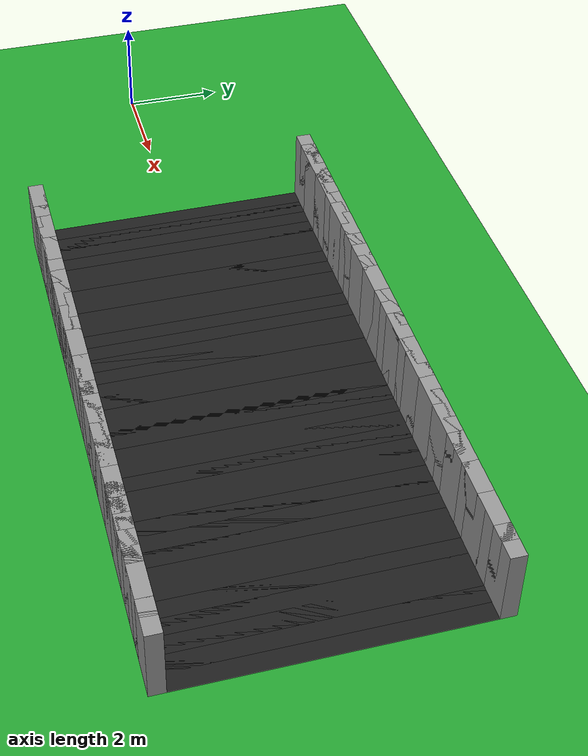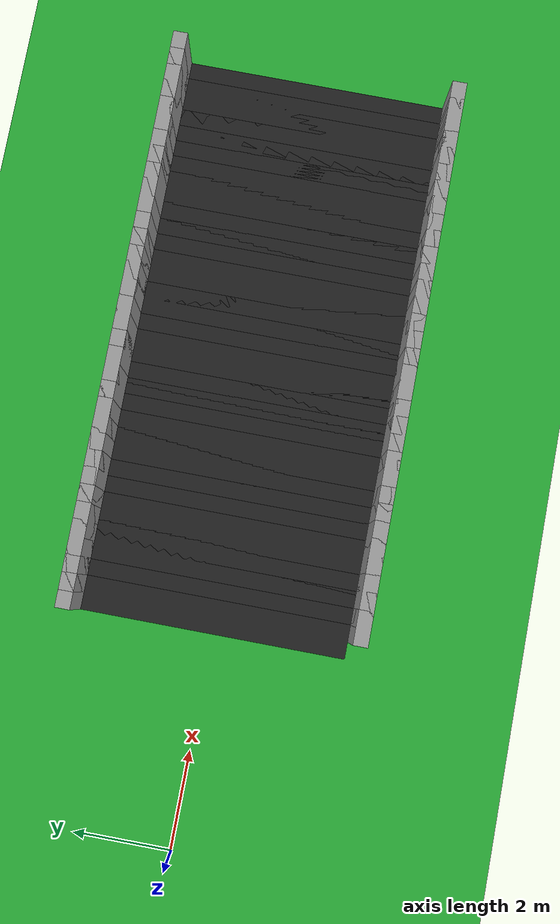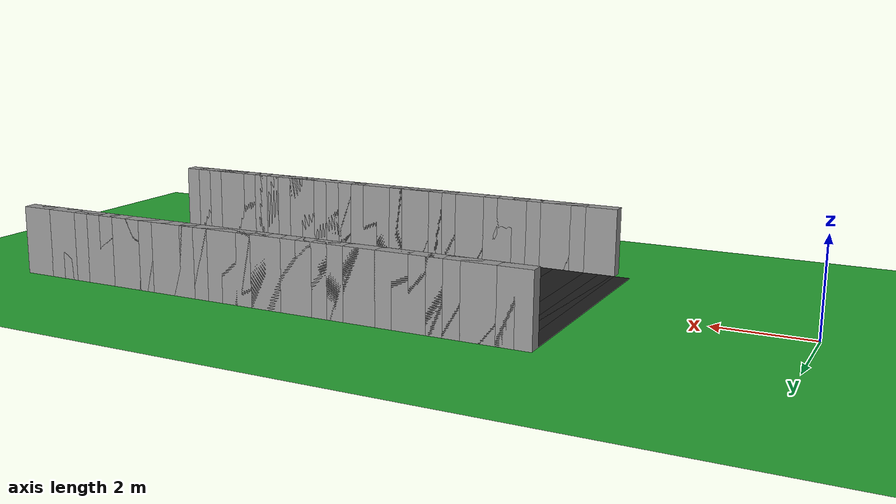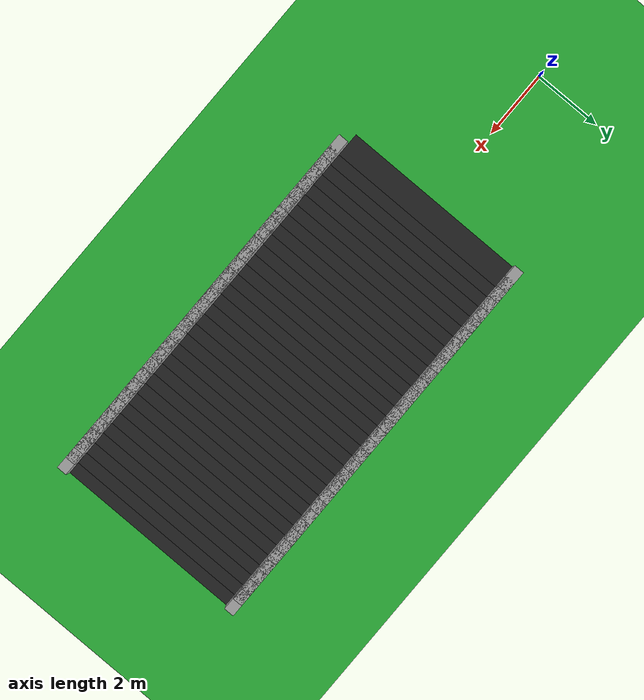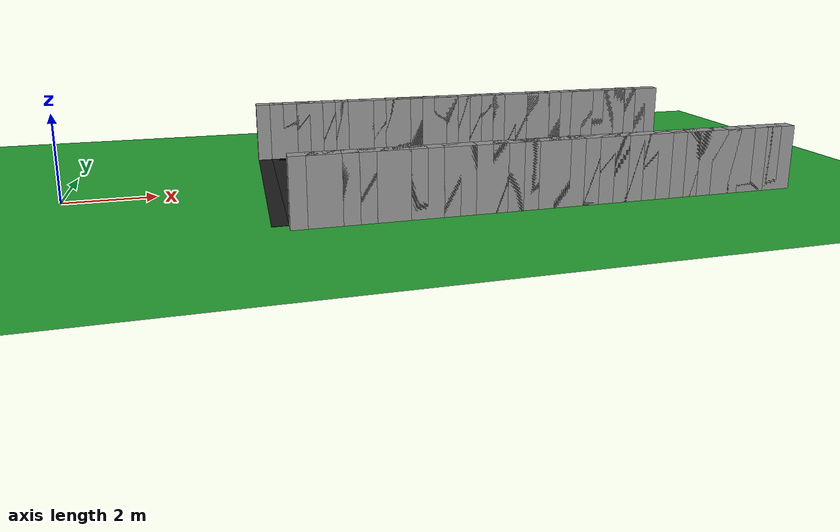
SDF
<sdf version="1.6">
 <world name="loop_speedloop">
  <include><uri>model://sun</uri></include>
  <model name="ground_plane">
   <static>true</static>
   <link name="link">
    <collision name="collision">
     <surface><friction><ode><mu>100</mu><mu2>50</mu2></ode></friction></surface>
     <geometry><plane><normal>0 0 1</normal><size>120 120</size></plane></geometry>
    </collision>
    <visual name="visual">
     <geometry><plane><normal>0 0 1</normal><size>120 120</size></plane></geometry>
     <material>
      <script><uri>file://media/materials/scripts/gazebo.material</uri><name>Gazebo/Green</name></script>
     </material>
    </visual>
   </link>
  </model>
  <model name="asphalt_13">
   <static>true</static>
   <pose>4.725 0.000 0.005 0 0 0.00000</pose>
   <link name="link">
    <visual name="visual">
     <geometry><box><size>0.710 5.500 0.010</size></box></geometry>
     <material>
      <script><uri>file://media/materials/scripts/gazebo.material</uri><name>Gazebo/Black</name></script>
     </material>
    </visual>
   </link>
  </model>
  <model name="curbL_13">
   <static>true</static>
   <pose>4.725 2.900 0.750 0 0 0.00000</pose>
   <link name="link">
    <collision name="collision"><geometry><box><size>0.710 0.300 1.500</size></box></geometry></collision>
    <visual name="visual">
     <geometry><box><size>0.710 0.300 1.500</size></box></geometry>
     <material>
      <script><uri>file://media/materials/scripts/gazebo.material</uri><name>Gazebo/Grey</name></script>
     </material>
    </visual>
   </link>
  </model>
  <model name="asphalt_14">
   <static>true</static>
   <pose>5.075 0.000 0.005 0 0 0.00000</pose>
   <link name="link">
    <visual name="visual">
     <geometry><box><size>0.710 5.500 0.010</size></box></geometry>
     <material>
      <script><uri>file://media/materials/scripts/gazebo.material</uri><name>Gazebo/Black</name></script>
     </material>
    </visual>
   </link>
  </model>
  <model name="curbL_14">
   <static>true</static>
   <pose>5.075 2.900 0.750 0 0 0.00000</pose>
   <link name="link">
    <collision name="collision"><geometry><box><size>0.710 0.300 1.500</size></box></geometry></collision>
    <visual name="visual">
     <geometry><box><size>0.710 0.300 1.500</size></box></geometry>
     <material>
      <script><uri>file://media/materials/scripts/gazebo.material</uri><name>Gazebo/Grey</name></script>
     </material>
    </visual>
   </link>
  </model>
  <model name="curbR_14">
   <static>true</static>
   <pose>5.075 -2.900 0.750 0 0 0.00000</pose>
   <link name="link">
    <collision name="collision"><geometry><box><size>0.710 0.300 1.500</size></box></geometry></collision>
    <visual name="visual">
     <geometry><box><size>0.710 0.300 1.500</size></box></geometry>
     <material>
      <script><uri>file://media/materials/scripts/gazebo.material</uri><name>Gazebo/Grey</name></script>
     </material>
    </visual>
   </link>
  </model>
  <model name="asphalt_15">
   <static>true</static>
   <pose>5.425 0.000 0.005 0 0 0.00000</pose>
   <link name="link">
    <visual name="visual">
     <geometry><box><size>0.710 5.500 0.010</size></box></geometry>
     <material>
      <script><uri>file://media/materials/scripts/gazebo.material</uri><name>Gazebo/Black</name></script>
     </material>
    </visual>
   </link>
  </model>
  <model name="curbL_15">
   <static>true</static>
   <pose>5.425 2.900 0.750 0 0 0.00000</pose>
   <link name="link">
    <collision name="collision"><geometry><box><size>0.710 0.300 1.500</size></box></geometry></collision>
    <visual name="visual">
     <geometry><box><size>0.710 0.300 1.500</size></box></geometry>
     <material>
      <script><uri>file://media/materials/scripts/gazebo.material</uri><name>Gazebo/Grey</name></script>
     </material>
    </visual>
   </link>
  </model>
  <model name="curbR_15">
   <static>true</static>
   <pose>5.425 -2.900 0.750 0 0 0.00000</pose>
   <link name="link">
    <collision name="collision"><geometry><box><size>0.710 0.300 1.500</size></box></geometry></collision>
    <visual name="visual">
     <geometry><box><size>0.710 0.300 1.500</size></box></geometry>
     <material>
      <script><uri>file://media/materials/scripts/gazebo.material</uri><name>Gazebo/Grey</name></script>
     </material>
    </visual>
   </link>
  </model>
  <model name="asphalt_16">
   <static>true</static>
   <pose>5.775 0.000 0.005 0 0 0.00000</pose>
   <link name="link">
    <visual name="visual">
     <geometry><box><size>0.710 5.500 0.010</size></box></geometry>
     <material>
      <script><uri>file://media/materials/scripts/gazebo.material</uri><name>Gazebo/Black</name></script>
     </material>
    </visual>
   </link>
  </model>
  <model name="curbL_16">
   <static>true</static>
   <pose>5.775 2.900 0.750 0 0 0.00000</pose>
   <link name="link">
    <collision name="collision"><geometry><box><size>0.710 0.300 1.500</size></box></geometry></collision>
    <visual name="visual">
     <geometry><box><size>0.710 0.300 1.500</size></box></geometry>
     <material>
      <script><uri>file://media/materials/scripts/gazebo.material</uri><name>Gazebo/Grey</name></script>
     </material>
    </visual>
   </link>
  </model>
  <model name="curbR_16">
   <static>true</static>
   <pose>5.775 -2.900 0.750 0 0 0.00000</pose>
   <link name="link">
    <collision name="collision"><geometry><box><size>0.710 0.300 1.500</size></box></geometry></collision>
    <visual name="visual">
     <geometry><box><size>0.710 0.300 1.500</size></box></geometry>
     <material>
      <script><uri>file://media/materials/scripts/gazebo.material</uri><name>Gazebo/Grey</name></script>
     </material>
    </visual>
   </link>
  </model>
  <model name="asphalt_17">
   <static>true</static>
   <pose>6.125 0.000 0.005 0 0 0.00000</pose>
   <link name="link">
    <visual name="visual">
     <geometry><box><size>0.710 5.500 0.010</size></box></geometry>
     <material>
      <script><uri>file://media/materials/scripts/gazebo.material</uri><name>Gazebo/Black</name></script>
     </material>
    </visual>
   </link>
  </model>
  <model name="curbL_17">
   <static>true</static>
   <pose>6.125 2.900 0.750 0 0 0.00000</pose>
   <link name="link">
    <collision name="collision"><geometry><box><size>0.710 0.300 1.500</size></box></geometry></collision>
    <visual name="visual">
     <geometry><box><size>0.710 0.300 1.500</size></box></geometry>
     <material>
      <script><uri>file://media/materials/scripts/gazebo.material</uri><name>Gazebo/Grey</name></script>
     </material>
    </visual>
   </link>
  </model>
  <model name="curbR_17">
   <static>true</static>
   <pose>6.125 -2.900 0.750 0 0 0.00000</pose>
   <link name="link">
    <collision name="collision"><geometry><box><size>0.710 0.300 1.500</size></box></geometry></collision>
    <visual name="visual">
     <geometry><box><size>0.710 0.300 1.500</size></box></geometry>
     <material>
      <script><uri>file://media/materials/scripts/gazebo.material</uri><name>Gazebo/Grey</name></script>
     </material>
    </visual>
   </link>
  </model>
  <model name="asphalt_18">
   <static>true</static>
   <pose>6.475 0.000 0.005 0 0 0.00000</pose>
   <link name="link">
    <visual name="visual">
     <geometry><box><size>0.710 5.500 0.010</size></box></geometry>
     <material>
      <script><uri>file://media/materials/scripts/gazebo.material</uri><name>Gazebo/Black</name></script>
     </material>
    </visual>
   </link>
  </model>
  <model name="curbL_18">
   <static>true</static>
   <pose>6.475 2.900 0.750 0 0 0.00000</pose>
   <link name="link">
    <collision name="collision"><geometry><box><size>0.710 0.300 1.500</size></box></geometry></collision>
    <visual name="visual">
     <geometry><box><size>0.710 0.300 1.500</size></box></geometry>
     <material>
      <script><uri>file://media/materials/scripts/gazebo.material</uri><name>Gazebo/Grey</name></script>
     </material>
    </visual>
   </link>
  </model>
  <model name="curbR_18">
   <static>true</static>
   <pose>6.475 -2.900 0.750 0 0 0.00000</pose>
   <link name="link">
    <collision name="collision"><geometry><box><size>0.710 0.300 1.500</size></box></geometry></collision>
    <visual name="visual">
     <geometry><box><size>0.710 0.300 1.500</size></box></geometry>
     <material>
      <script><uri>file://media/materials/scripts/gazebo.material</uri><name>Gazebo/Grey</name></script>
     </material>
    </visual>
   </link>
  </model>
  <model name="asphalt_19">
   <static>true</static>
   <pose>6.825 0.000 0.005 0 0 0.00000</pose>
   <link name="link">
    <visual name="visual">
     <geometry><box><size>0.710 5.500 0.010</size></box></geometry>
     <material>
      <script><uri>file://media/materials/scripts/gazebo.material</uri><name>Gazebo/Black</name></script>
     </material>
    </visual>
   </link>
  </model>
  <model name="curbL_19">
   <static>true</static>
   <pose>6.825 2.900 0.750 0 0 0.00000</pose>
   <link name="link">
    <collision name="collision"><geometry><box><size>0.710 0.300 1.500</size></box></geometry></collision>
    <visual name="visual">
     <geometry><box><size>0.710 0.300 1.500</size></box></geometry>
     <material>
      <script><uri>file://media/materials/scripts/gazebo.material</uri><name>Gazebo/Grey</name></script>
     </material>
    </visual>
   </link>
  </model>
  <model name="curbR_19">
   <static>true</static>
   <pose>6.825 -2.900 0.750 0 0 0.00000</pose>
   <link name="link">
    <collision name="collision"><geometry><box><size>0.710 0.300 1.500</size></box></geometry></collision>
    <visual name="visual">
     <geometry><box><size>0.710 0.300 1.500</size></box></geometry>
     <material>
      <script><uri>file://media/materials/scripts/gazebo.material</uri><name>Gazebo/Grey</name></script>
     </material>
    </visual>
   </link>
  </model>
  <model name="asphalt_20">
   <static>true</static>
   <pose>7.175 0.000 0.005 0 0 0.00000</pose>
   <link name="link">
    <visual name="visual">
     <geometry><box><size>0.710 5.500 0.010</size></box></geometry>
     <material>
      <script><uri>file://media/materials/scripts/gazebo.material</uri><name>Gazebo/Black</name></script>
     </material>
    </visual>
   </link>
  </model>
  <model name="curbL_20">
   <static>true</static>
   <pose>7.175 2.900 0.750 0 0 0.00000</pose>
   <link name="link">
    <collision name="collision"><geometry><box><size>0.710 0.300 1.500</size></box></geometry></collision>
    <visual name="visual">
     <geometry><box><size>0.710 0.300 1.500</size></box></geometry>
     <material>
      <script><uri>file://media/materials/scripts/gazebo.material</uri><name>Gazebo/Grey</name></script>
     </material>
    </visual>
   </link>
  </model>
  <model name="curbR_20">
   <static>true</static>
   <pose>7.175 -2.900 0.750 0 0 0.00000</pose>
   <link name="link">
    <collision name="collision"><geometry><box><size>0.710 0.300 1.500</size></box></geometry></collision>
    <visual name="visual">
     <geometry><box><size>0.710 0.300 1.500</size></box></geometry>
     <material>
      <script><uri>file://media/materials/scripts/gazebo.material</uri><name>Gazebo/Grey</name></script>
     </material>
    </visual>
   </link>
  </model>
  <model name="asphalt_21">
   <static>true</static>
   <pose>7.525 0.000 0.005 0 0 0.00000</pose>
   <link name="link">
    <visual name="visual">
     <geometry><box><size>0.710 5.500 0.010</size></box></geometry>
     <material>
      <script><uri>file://media/materials/scripts/gazebo.material</uri><name>Gazebo/Black</name></script>
     </material>
    </visual>
   </link>
  </model>
  <model name="curbL_21">
   <static>true</static>
   <pose>7.525 2.900 0.750 0 0 0.00000</pose>
   <link name="link">
    <collision name="collision"><geometry><box><size>0.710 0.300 1.500</size></box></geometry></collision>
    <visual name="visual">
     <geometry><box><size>0.710 0.300 1.500</size></box></geometry>
     <material>
      <script><uri>file://media/materials/scripts/gazebo.material</uri><name>Gazebo/Grey</name></script>
     </material>
    </visual>
   </link>
  </model>
  <model name="curbR_21">
   <static>true</static>
   <pose>7.525 -2.900 0.750 0 0 0.00000</pose>
   <link name="link">
    <collision name="collision"><geometry><box><size>0.710 0.300 1.500</size></box></geometry></collision>
    <visual name="visual">
     <geometry><box><size>0.710 0.300 1.500</size></box></geometry>
     <material>
      <script><uri>file://media/materials/scripts/gazebo.material</uri><name>Gazebo/Grey</name></script>
     </material>
    </visual>
   </link>
  </model>
  <model name="asphalt_22">
   <static>true</static>
   <pose>7.875 0.000 0.005 0 0 0.00000</pose>
   <link name="link">
    <visual name="visual">
     <geometry><box><size>0.710 5.500 0.010</size></box></geometry>
     <material>
      <script><uri>file://media/materials/scripts/gazebo.material</uri><name>Gazebo/Black</name></script>
     </material>
    </visual>
   </link>
  </model>
  <model name="curbL_22">
   <static>true</static>
   <pose>7.875 2.900 0.750 0 0 0.00000</pose>
   <link name="link">
    <collision name="collision"><geometry><box><size>0.710 0.300 1.500</size></box></geometry></collision>
    <visual name="visual">
     <geometry><box><size>0.710 0.300 1.500</size></box></geometry>
     <material>
      <script><uri>file://media/materials/scripts/gazebo.material</uri><name>Gazebo/Grey</name></script>
     </material>
    </visual>
   </link>
  </model>
  <model name="curbR_22">
   <static>true</static>
   <pose>7.875 -2.900 0.750 0 0 0.00000</pose>
   <link name="link">
    <collision name="collision"><geometry><box><size>0.710 0.300 1.500</size></box></geometry></collision>
    <visual name="visual">
     <geometry><box><size>0.710 0.300 1.500</size></box></geometry>
     <material>
      <script><uri>file://media/materials/scripts/gazebo.material</uri><name>Gazebo/Grey</name></script>
     </material>
    </visual>
   </link>
  </model>
  <model name="asphalt_23">
   <static>true</static>
   <pose>8.225 0.000 0.005 0 0 0.00000</pose>
   <link name="link">
    <visual name="visual">
     <geometry><box><size>0.710 5.500 0.010</size></box></geometry>
     <material>
      <script><uri>file://media/materials/scripts/gazebo.material</uri><name>Gazebo/Black</name></script>
     </material>
    </visual>
   </link>
  </model>
  <model name="curbL_23">
   <static>true</static>
   <pose>8.225 2.900 0.750 0 0 0.00000</pose>
   <link name="link">
    <collision name="collision"><geometry><box><size>0.710 0.300 1.500</size></box></geometry></collision>
    <visual name="visual">
     <geometry><box><size>0.710 0.300 1.500</size></box></geometry>
     <material>
      <script><uri>file://media/materials/scripts/gazebo.material</uri><name>Gazebo/Grey</name></script>
     </material>
    </visual>
   </link>
  </model>
  <model name="curbR_23">
   <static>true</static>
   <pose>8.225 -2.900 0.750 0 0 0.00000</pose>
   <link name="link">
    <collision name="collision"><geometry><box><size>0.710 0.300 1.500</size></box></geometry></collision>
    <visual name="visual">
     <geometry><box><size>0.710 0.300 1.500</size></box></geometry>
     <material>
      <script><uri>file://media/materials/scripts/gazebo.material</uri><name>Gazebo/Grey</name></script>
     </material>
    </visual>
   </link>
  </model>
  <model name="asphalt_24">
   <static>true</static>
   <pose>8.575 0.000 0.005 0 0 0.00000</pose>
   <link name="link">
    <visual name="visual">
     <geometry><box><size>0.710 5.500 0.010</size></box></geometry>
     <material>
      <script><uri>file://media/materials/scripts/gazebo.material</uri><name>Gazebo/Black</name></script>
     </material>
    </visual>
   </link>
  </model>
  <model name="curbL_24">
   <static>true</static>
   <pose>8.575 2.900 0.750 0 0 0.00000</pose>
   <link name="link">
    <collision name="collision"><geometry><box><size>0.710 0.300 1.500</size></box></geometry></collision>
    <visual name="visual">
     <geometry><box><size>0.710 0.300 1.500</size></box></geometry>
     <material>
      <script><uri>file://media/materials/scripts/gazebo.material</uri><name>Gazebo/Grey</name></script>
     </material>
    </visual>
   </link>
  </model>
  <model name="curbR_24">
   <static>true</static>
   <pose>8.575 -2.900 0.750 0 0 0.00000</pose>
   <link name="link">
    <collision name="collision"><geometry><box><size>0.710 0.300 1.500</size></box></geometry></collision>
    <visual name="visual">
     <geometry><box><size>0.710 0.300 1.500</size></box></geometry>
     <material>
      <script><uri>file://media/materials/scripts/gazebo.material</uri><name>Gazebo/Grey</name></script>
     </material>
    </visual>
   </link>
  </model>
  <model name="asphalt_25">
   <static>true</static>
   <pose>8.925 0.000 0.005 0 0 0.00000</pose>
   <link name="link">
    <visual name="visual">
     <geometry><box><size>0.710 5.500 0.010</size></box></geometry>
     <material>
      <script><uri>file://media/materials/scripts/gazebo.material</uri><name>Gazebo/Black</name></script>
     </material>
    </visual>
   </link>
  </model>
  <model name="curbL_25">
   <static>true</static>
   <pose>8.925 2.900 0.750 0 0 0.00000</pose>
   <link name="link">
    <collision name="collision"><geometry><box><size>0.710 0.300 1.500</size></box></geometry></collision>
    <visual name="visual">
     <geometry><box><size>0.710 0.300 1.500</size></box></geometry>
     <material>
      <script><uri>file://media/materials/scripts/gazebo.material</uri><name>Gazebo/Grey</name></script>
     </material>
    </visual>
   </link>
  </model>
  <model name="curbR_25">
   <static>true</static>
   <pose>8.925 -2.900 0.750 0 0 0.00000</pose>
   <link name="link">
    <collision name="collision"><geometry><box><size>0.710 0.300 1.500</size></box></geometry></collision>
    <visual name="visual">
     <geometry><box><size>0.710 0.300 1.500</size></box></geometry>
     <material>
      <script><uri>file://media/materials/scripts/gazebo.material</uri><name>Gazebo/Grey</name></script>
     </material>
    </visual>
   </link>
  </model>
  <model name="asphalt_26">
   <static>true</static>
   <pose>9.275 0.000 0.005 0 0 0.00000</pose>
   <link name="link">
    <visual name="visual">
     <geometry><box><size>0.710 5.500 0.010</size></box></geometry>
     <material>
      <script><uri>file://media/materials/scripts/gazebo.material</uri><name>Gazebo/Black</name></script>
     </material>
    </visual>
   </link>
  </model>
  <model name="curbL_26">
   <static>true</static>
   <pose>9.275 2.900 0.750 0 0 0.00000</pose>
   <link name="link">
    <collision name="collision"><geometry><box><size>0.710 0.300 1.500</size></box></geometry></collision>
    <visual name="visual">
     <geometry><box><size>0.710 0.300 1.500</size></box></geometry>
     <material>
      <script><uri>file://media/materials/scripts/gazebo.material</uri><name>Gazebo/Grey</name></script>
     </material>
    </visual>
   </link>
  </model>
  <model name="curbR_26">
   <static>true</static>
   <pose>9.275 -2.900 0.750 0 0 0.00000</pose>
   <link name="link">
    <collision name="collision"><geometry><box><size>0.710 0.300 1.500</size></box></geometry></collision>
    <visual name="visual">
     <geometry><box><size>0.710 0.300 1.500</size></box></geometry>
     <material>
      <script><uri>file://media/materials/scripts/gazebo.material</uri><name>Gazebo/Grey</name></script>
     </material>
    </visual>
   </link>
  </model>
  <model name="asphalt_27">
   <static>true</static>
   <pose>9.625 0.000 0.005 0 0 0.00000</pose>
   <link name="link">
    <visual name="visual">
     <geometry><box><size>0.710 5.500 0.010</size></box></geometry>
     <material>
      <script><uri>file://media/materials/scripts/gazebo.material</uri><name>Gazebo/Black</name></script>
     </material>
    </visual>
   </link>
  </model>
  <model name="curbL_27">
   <static>true</static>
   <pose>9.625 2.900 0.750 0 0 0.00000</pose>
   <link name="link">
    <collision name="collision"><geometry><box><size>0.710 0.300 1.500</size></box></geometry></collision>
    <visual name="visual">
     <geometry><box><size>0.710 0.300 1.500</size></box></geometry>
     <material>
      <script><uri>file://media/materials/scripts/gazebo.material</uri><name>Gazebo/Grey</name></script>
     </material>
    </visual>
   </link>
  </model>
  <model name="curbR_27">
   <static>true</static>
   <pose>9.625 -2.900 0.750 0 0 0.00000</pose>
   <link name="link">
    <collision name="collision"><geometry><box><size>0.710 0.300 1.500</size></box></geometry></collision>
    <visual name="visual">
     <geometry><box><size>0.710 0.300 1.500</size></box></geometry>
     <material>
      <script><uri>file://media/materials/scripts/gazebo.material</uri><name>Gazebo/Grey</name></script>
     </material>
    </visual>
   </link>
  </model>
  <model name="asphalt_28">
   <static>true</static>
   <pose>9.975 0.000 0.005 0 0 0.00000</pose>
   <link name="link">
    <visual name="visual">
     <geometry><box><size>0.710 5.500 0.010</size></box></geometry>
     <material>
      <script><uri>file://media/materials/scripts/gazebo.material</uri><name>Gazebo/Black</name></script>
     </material>
    </visual>
   </link>
  </model>
  <model name="curbL_28">
   <static>true</static>
   <pose>9.975 2.900 0.750 0 0 0.00000</pose>
   <link name="link">
    <collision name="collision"><geometry><box><size>0.710 0.300 1.500</size></box></geometry></collision>
    <visual name="visual">
     <geometry><box><size>0.710 0.300 1.500</size></box></geometry>
     <material>
      <script><uri>file://media/materials/scripts/gazebo.material</uri><name>Gazebo/Grey</name></script>
     </material>
    </visual>
   </link>
  </model>
  <model name="curbR_28">
   <static>true</static>
   <pose>9.975 -2.900 0.750 0 0 0.00000</pose>
   <link name="link">
    <collision name="collision"><geometry><box><size>0.710 0.300 1.500</size></box></geometry></collision>
    <visual name="visual">
     <geometry><box><size>0.710 0.300 1.500</size></box></geometry>
     <material>
      <script><uri>file://media/materials/scripts/gazebo.material</uri><name>Gazebo/Grey</name></script>
     </material>
    </visual>
   </link>
  </model>
  <model name="asphalt_29">
   <static>true</static>
   <pose>10.325 0.000 0.005 0 0 0.00000</pose>
   <link name="link">
    <visual name="visual">
     <geometry><box><size>0.710 5.500 0.010</size></box></geometry>
     <material>
      <script><uri>file://media/materials/scripts/gazebo.material</uri><name>Gazebo/Black</name></script>
     </material>
    </visual>
   </link>
  </model>
  <model name="curbL_29">
   <static>true</static>
   <pose>10.325 2.900 0.750 0 0 0.00000</pose>
   <link name="link">
    <collision name="collision"><geometry><box><size>0.710 0.300 1.500</size></box></geometry></collision>
    <visual name="visual">
     <geometry><box><size>0.710 0.300 1.500</size></box></geometry>
     <material>
      <script><uri>file://media/materials/scripts/gazebo.material</uri><name>Gazebo/Grey</name></script>
     </material>
    </visual>
   </link>
  </model>
  <model name="curbR_29">
   <static>true</static>
   <pose>10.325 -2.900 0.750 0 0 0.00000</pose>
   <link name="link">
    <collision name="collision"><geometry><box><size>0.710 0.300 1.500</size></box></geometry></collision>
    <visual name="visual">
     <geometry><box><size>0.710 0.300 1.500</size></box></geometry>
     <material>
      <script><uri>file://media/materials/scripts/gazebo.material</uri><name>Gazebo/Grey</name></script>
     </material>
    </visual>
   </link>
  </model>
  <model name="asphalt_30">
   <static>true</static>
   <pose>10.675 0.000 0.005 0 0 0.00000</pose>
   <link name="link">
    <visual name="visual">
     <geometry><box><size>0.710 5.500 0.010</size></box></geometry>
     <material>
      <script><uri>file://media/materials/scripts/gazebo.material</uri><name>Gazebo/Black</name></script>
     </material>
    </visual>
   </link>
  </model>
  <model name="curbL_30">
   <static>true</static>
   <pose>10.675 2.900 0.750 0 0 0.00000</pose>
   <link name="link">
    <collision name="collision"><geometry><box><size>0.710 0.300 1.500</size></box></geometry></collision>
    <visual name="visual">
     <geometry><box><size>0.710 0.300 1.500</size></box></geometry>
     <material>
      <script><uri>file://media/materials/scripts/gazebo.material</uri><name>Gazebo/Grey</name></script>
     </material>
    </visual>
   </link>
  </model>
  <model name="curbR_30">
   <static>true</static>
   <pose>10.675 -2.900 0.750 0 0 0.00000</pose>
   <link name="link">
    <collision name="collision"><geometry><box><size>0.710 0.300 1.500</size></box></geometry></collision>
    <visual name="visual">
     <geometry><box><size>0.710 0.300 1.500</size></box></geometry>
     <material>
      <script><uri>file://media/materials/scripts/gazebo.material</uri><name>Gazebo/Grey</name></script>
     </material>
    </visual>
   </link>
  </model>
  <model name="asphalt_31">
   <static>true</static>
   <pose>11.025 0.000 0.005 0 0 0.00000</pose>
   <link name="link">
    <visual name="visual">
     <geometry><box><size>0.710 5.500 0.010</size></box></geometry>
     <material>
      <script><uri>file://media/materials/scripts/gazebo.material</uri><name>Gazebo/Black</name></script>
     </material>
    </visual>
   </link>
  </model>
  <model name="curbL_31">
   <static>true</static>
   <pose>11.025 2.900 0.750 0 0 0.00000</pose>
   <link name="link">
    <collision name="collision"><geometry><box><size>0.710 0.300 1.500</size></box></geometry></collision>
    <visual name="visual">
     <geometry><box><size>0.710 0.300 1.500</size></box></geometry>
     <material>
      <script><uri>file://media/materials/scripts/gazebo.material</uri><name>Gazebo/Grey</name></script>
     </material>
    </visual>
   </link>
  </model>
  <model name="curbR_31">
   <static>true</static>
   <pose>11.025 -2.900 0.750 0 0 0.00000</pose>
   <link name="link">
    <collision name="collision"><geometry><box><size>0.710 0.300 1.500</size></box></geometry></collision>
    <visual name="visual">
     <geometry><box><size>0.710 0.300 1.500</size></box></geometry>
     <material>
      <script><uri>file://media/materials/scripts/gazebo.material</uri><name>Gazebo/Grey</name></script>
     </material>
    </visual>
   </link>
  </model>
  <model name="asphalt_32">
   <static>true</static>
   <pose>11.375 0.000 0.005 0 0 0.00000</pose>
   <link name="link">
    <visual name="visual">
     <geometry><box><size>0.710 5.500 0.010</size></box></geometry>
     <material>
      <script><uri>file://media/materials/scripts/gazebo.material</uri><name>Gazebo/Black</name></script>
     </material>
    </visual>
   </link>
  </model>
  <model name="curbL_32">
   <static>true</static>
   <pose>11.375 2.900 0.750 0 0 0.00000</pose>
   <link name="link">
    <collision name="collision"><geometry><box><size>0.710 0.300 1.500</size></box></geometry></collision>
    <visual name="visual">
     <geometry><box><size>0.710 0.300 1.500</size></box></geometry>
     <material>
      <script><uri>file://media/materials/scripts/gazebo.material</uri><name>Gazebo/Grey</name></script>
     </material>
    </visual>
   </link>
  </model>
  <model name="curbR_32">
   <static>true</static>
   <pose>11.375 -2.900 0.750 0 0 0.00000</pose>
   <link name="link">
    <collision name="collision"><geometry><box><size>0.710 0.300 1.500</size></box></geometry></collision>
    <visual name="visual">
     <geometry><box><size>0.710 0.300 1.500</size></box></geometry>
     <material>
      <script><uri>file://media/materials/scripts/gazebo.material</uri><name>Gazebo/Grey</name></script>
     </material>
    </visual>
   </link>
  </model>
  <model name="asphalt_33">
   <static>true</static>
   <pose>11.725 0.000 0.005 0 0 0.00000</pose>
   <link name="link">
    <visual name="visual">
     <geometry><box><size>0.710 5.500 0.010</size></box></geometry>
     <material>
      <script><uri>file://media/materials/scripts/gazebo.material</uri><name>Gazebo/Black</name></script>
     </material>
    </visual>
   </link>
  </model>
  <model name="curbL_33">
   <static>true</static>
   <pose>11.725 2.900 0.750 0 0 0.00000</pose>
   <link name="link">
    <collision name="collision"><geometry><box><size>0.710 0.300 1.500</size></box></geometry></collision>
    <visual name="visual">
     <geometry><box><size>0.710 0.300 1.500</size></box></geometry>
     <material>
      <script><uri>file://media/materials/scripts/gazebo.material</uri><name>Gazebo/Grey</name></script>
     </material>
    </visual>
   </link>
  </model>
  <model name="curbR_33">
   <static>true</static>
   <pose>11.725 -2.900 0.750 0 0 0.00000</pose>
   <link name="link">
    <collision name="collision"><geometry><box><size>0.710 0.300 1.500</size></box></geometry></collision>
    <visual name="visual">
     <geometry><box><size>0.710 0.300 1.500</size></box></geometry>
     <material>
      <script><uri>file://media/materials/scripts/gazebo.material</uri><name>Gazebo/Grey</name></script>
     </material>
    </visual>
   </link>
  </model>
  <model name="asphalt_34">
   <static>true</static>
   <pose>12.075 0.000 0.005 0 0 0.00000</pose>
   <link name="link">
    <visual name="visual">
     <geometry><box><size>0.710 5.500 0.010</size></box></geometry>
     <material>
      <script><uri>file://media/materials/scripts/gazebo.material</uri><name>Gazebo/Black</name></script>
     </material>
    </visual>
   </link>
  </model>
  <model name="curbL_34">
   <static>true</static>
   <pose>12.075 2.900 0.750 0 0 0.00000</pose>
   <link name="link">
    <collision name="collision"><geometry><box><size>0.710 0.300 1.500</size></box></geometry></collision>
    <visual name="visual">
     <geometry><box><size>0.710 0.300 1.500</size></box></geometry>
     <material>
      <script><uri>file://media/materials/scripts/gazebo.material</uri><name>Gazebo/Grey</name></script>
     </material>
    </visual>
   </link>
  </model>
  <model name="curbR_34">
   <static>true</static>
   <pose>12.075 -2.900 0.750 0 0 0.00000</pose>
   <link name="link">
    <collision name="collision"><geometry><box><size>0.710 0.300 1.500</size></box></geometry></collision>
    <visual name="visual">
     <geometry><box><size>0.710 0.300 1.500</size></box></geometry>
     <material>
      <script><uri>file://media/materials/scripts/gazebo.material</uri><name>Gazebo/Grey</name></script>
     </material>
    </visual>
   </link>
  </model>
  <model name="asphalt_35">
   <static>true</static>
   <pose>12.425 0.000 0.005 0 0 0.00000</pose>
   <link name="link">
    <visual name="visual">
     <geometry><box><size>0.710 5.500 0.010</size></box></geometry>
     <material>
      <script><uri>file://media/materials/scripts/gazebo.material</uri><name>Gazebo/Black</name></script>
     </material>
    </visual>
   </link>
  </model>
  <model name="curbL_35">
   <static>true</static>
   <pose>12.425 2.900 0.750 0 0 0.00000</pose>
   <link name="link">
    <collision name="collision"><geometry><box><size>0.710 0.300 1.500</size></box></geometry></collision>
    <visual name="visual">
     <geometry><box><size>0.710 0.300 1.500</size></box></geometry>
     <material>
      <script><uri>file://media/materials/scripts/gazebo.material</uri><name>Gazebo/Grey</name></script>
     </material>
    </visual>
   </link>
  </model>
  <model name="curbR_35">
   <static>true</static>
   <pose>12.425 -2.900 0.750 0 0 0.00000</pose>
   <link name="link">
    <collision name="collision"><geometry><box><size>0.710 0.300 1.500</size></box></geometry></collision>
    <visual name="visual">
     <geometry><box><size>0.710 0.300 1.500</size></box></geometry>
     <material>
      <script><uri>file://media/materials/scripts/gazebo.material</uri><name>Gazebo/Grey</name></script>
     </material>
    </visual>
   </link>
  </model>
  <model name="asphalt_36">
   <static>true</static>
   <pose>12.775 0.000 0.005 0 0 0.00000</pose>
   <link name="link">
    <visual name="visual">
     <geometry><box><size>0.710 5.500 0.010</size></box></geometry>
     <material>
      <script><uri>file://media/materials/scripts/gazebo.material</uri><name>Gazebo/Black</name></script>
     </material>
    </visual>
   </link>
  </model>
  <model name="curbL_36">
   <static>true</static>
   <pose>12.775 2.900 0.750 0 0 0.00000</pose>
   <link name="link">
    <collision name="collision"><geometry><box><size>0.710 0.300 1.500</size></box></geometry></collision>
    <visual name="visual">
     <geometry><box><size>0.710 0.300 1.500</size></box></geometry>
     <material>
      <script><uri>file://media/materials/scripts/gazebo.material</uri><name>Gazebo/Grey</name></script>
     </material>
    </visual>
   </link>
  </model>
  <model name="curbR_36">
   <static>true</static>
   <pose>12.775 -2.900 0.750 0 0 0.00000</pose>
   <link name="link">
    <collision name="collision"><geometry><box><size>0.710 0.300 1.500</size></box></geometry></collision>
    <visual name="visual">
     <geometry><box><size>0.710 0.300 1.500</size></box></geometry>
     <material>
      <script><uri>file://media/materials/scripts/gazebo.material</uri><name>Gazebo/Grey</name></script>
     </material>
    </visual>
   </link>
  </model>
  <model name="asphalt_37">
   <static>true</static>
   <pose>13.125 0.000 0.005 0 0 0.00000</pose>
   <link name="link">
    <visual name="visual">
     <geometry><box><size>0.710 5.500 0.010</size></box></geometry>
     <material>
      <script><uri>file://media/materials/scripts/gazebo.material</uri><name>Gazebo/Black</name></script>
     </material>
    </visual>
   </link>
  </model>
  <model name="curbL_37">
   <static>true</static>
   <pose>13.125 2.900 0.750 0 0 0.00000</pose>
   <link name="link">
    <collision name="collision"><geometry><box><size>0.710 0.300 1.500</size></box></geometry></collision>
    <visual name="visual">
     <geometry><box><size>0.710 0.300 1.500</size></box></geometry>
     <material>
      <script><uri>file://media/materials/scripts/gazebo.material</uri><name>Gazebo/Grey</name></script>
     </material>
    </visual>
   </link>
  </model>
  <model name="curbR_37">
   <static>true</static>
   <pose>13.125 -2.900 0.750 0 0 0.00000</pose>
   <link name="link">
    <collision name="collision"><geometry><box><size>0.710 0.300 1.500</size></box></geometry></collision>
    <visual name="visual">
     <geometry><box><size>0.710 0.300 1.500</size></box></geometry>
     <material>
      <script><uri>file://media/materials/scripts/gazebo.material</uri><name>Gazebo/Grey</name></script>
     </material>
    </visual>
   </link>
  </model>
  <model name="asphalt_38">
   <static>true</static>
   <pose>13.475 0.000 0.005 0 0 0.00000</pose>
   <link name="link">
    <visual name="visual">
     <geometry><box><size>0.710 5.500 0.010</size></box></geometry>
     <material>
      <script><uri>file://media/materials/scripts/gazebo.material</uri><name>Gazebo/Black</name></script>
     </material>
    </visual>
   </link>
  </model>
  <model name="curbL_38">
   <static>true</static>
   <pose>13.475 2.900 0.750 0 0 0.00000</pose>
   <link name="link">
    <collision name="collision"><geometry><box><size>0.710 0.300 1.500</size></box></geometry></collision>
    <visual name="visual">
     <geometry><box><size>0.710 0.300 1.500</size></box></geometry>
     <material>
      <script><uri>file://media/materials/scripts/gazebo.material</uri><name>Gazebo/Grey</name></script>
     </material>
    </visual>
   </link>
  </model>
  <model name="curbR_38">
   <static>true</static>
   <pose>13.475 -2.900 0.750 0 0 0.00000</pose>
   <link name="link">
    <collision name="collision"><geometry><box><size>0.710 0.300 1.500</size></box></geometry></collision>
    <visual name="visual">
     <geometry><box><size>0.710 0.300 1.500</size></box></geometry>
     <material>
      <script><uri>file://media/materials/scripts/gazebo.material</uri><name>Gazebo/Grey</name></script>
     </material>
    </visual>
   </link>
  </model>
  <model name="asphalt_39">
   <static>true</static>
   <pose>13.825 0.000 0.005 0 0 0.00000</pose>
   <link name="link">
    <visual name="visual">
     <geometry><box><size>0.710 5.500 0.010</size></box></geometry>
     <material>
      <script><uri>file://media/materials/scripts/gazebo.material</uri><name>Gazebo/Black</name></script>
     </material>
    </visual>
   </link>
  </model>
  <model name="curbL_39">
   <static>true</static>
   <pose>13.825 2.900 0.750 0 0 0.00000</pose>
   <link name="link">
    <collision name="collision"><geometry><box><size>0.710 0.300 1.500</size></box></geometry></collision>
    <visual name="visual">
     <geometry><box><size>0.710 0.300 1.500</size></box></geometry>
     <material>
      <script><uri>file://media/materials/scripts/gazebo.material</uri><name>Gazebo/Grey</name></script>
     </material>
    </visual>
   </link>
  </model>
  <model name="curbR_39">
   <static>true</static>
   <pose>13.825 -2.900 0.750 0 0 0.00000</pose>
   <link name="link">
    <collision name="collision"><geometry><box><size>0.710 0.300 1.500</size></box></geometry></collision>
    <visual name="visual">
     <geometry><box><size>0.710 0.300 1.500</size></box></geometry>
     <material>
      <script><uri>file://media/materials/scripts/gazebo.material</uri><name>Gazebo/Grey</name></script>
     </material>
    </visual>
   </link>
  </model>
  <model name="asphalt_40">
   <static>true</static>
   <pose>14.175 0.000 0.005 0 0 0.00000</pose>
   <link name="link">
    <visual name="visual">
     <geometry><box><size>0.710 5.500 0.010</size></box></geometry>
     <material>
      <script><uri>file://media/materials/scripts/gazebo.material</uri><name>Gazebo/Black</name></script>
     </material>
    </visual>
   </link>
  </model>
  <model name="curbL_40">
   <static>true</static>
   <pose>14.175 2.900 0.750 0 0 0.00000</pose>
   <link name="link">
    <collision name="collision"><geometry><box><size>0.710 0.300 1.500</size></box></geometry></collision>
    <visual name="visual">
     <geometry><box><size>0.710 0.300 1.500</size></box></geometry>
     <material>
      <script><uri>file://media/materials/scripts/gazebo.material</uri><name>Gazebo/Grey</name></script>
     </material>
    </visual>
   </link>
  </model>
  <model name="curbR_40">
   <static>true</static>
   <pose>14.175 -2.900 0.750 0 0 0.00000</pose>
   <link name="link">
    <collision name="collision"><geometry><box><size>0.710 0.300 1.500</size></box></geometry></collision>
    <visual name="visual">
     <geometry><box><size>0.710 0.300 1.500</size></box></geometry>
     <material>
      <script><uri>file://media/materials/scripts/gazebo.material</uri><name>Gazebo/Grey</name></script>
     </material>
    </visual>
   </link>
  </model>
  <model name="asphalt_41">
   <static>true</static>
   <pose>14.525 0.000 0.005 0 0 0.00000</pose>
   <link name="link">
    <visual name="visual">
     <geometry><box><size>0.710 5.500 0.010</size></box></geometry>
     <material>
      <script><uri>file://media/materials/scripts/gazebo.material</uri><name>Gazebo/Black</name></script>
     </material>
    </visual>
   </link>
  </model>
  <model name="curbL_41">
   <static>true</static>
   <pose>14.525 2.900 0.750 0 0 0.00000</pose>
   <link name="link">
    <collision name="collision"><geometry><box><size>0.710 0.300 1.500</size></box></geometry></collision>
    <visual name="visual">
     <geometry><box><size>0.710 0.300 1.500</size></box></geometry>
     <material>
      <script><uri>file://media/materials/scripts/gazebo.material</uri><name>Gazebo/Grey</name></script>
     </material>
    </visual>
   </link>
  </model>
  <model name="curbR_41">
   <static>true</static>
   <pose>14.525 -2.900 0.750 0 0 0.00000</pose>
   <link name="link">
    <collision name="collision"><geometry><box><size>0.710 0.300 1.500</size></box></geometry></collision>
    <visual name="visual">
     <geometry><box><size>0.710 0.300 1.500</size></box></geometry>
     <material>
      <script><uri>file://media/materials/scripts/gazebo.material</uri><name>Gazebo/Grey</name></script>
     </material>
    </visual>
   </link>
  </model>
  <model name="asphalt_42">
   <static>true</static>
   <pose>14.875 0.000 0.005 0 0 0.00000</pose>
   <link name="link">
    <visual name="visual">
     <geometry><box><size>0.710 5.500 0.010</size></box></geometry>
     <material>
      <script><uri>file://media/materials/scripts/gazebo.material</uri><name>Gazebo/Black</name></script>
     </material>
    </visual>
   </link>
  </model>
  <model name="curbL_42">
   <static>true</static>
   <pose>14.875 2.900 0.750 0 0 0.00000</pose>
   <link name="link">
    <collision name="collision"><geometry><box><size>0.710 0.300 1.500</size></box></geometry></collision>
    <visual name="visual">
     <geometry><box><size>0.710 0.300 1.500</size></box></geometry>
     <material>
      <script><uri>file://media/materials/scripts/gazebo.material</uri><name>Gazebo/Grey</name></script>
     </material>
    </visual>
   </link>
  </model>
  <model name="curbR_42">
   <static>true</static>
   <pose>14.875 -2.900 0.750 0 0 0.00000</pose>
   <link name="link">
    <collision name="collision"><geometry><box><size>0.710 0.300 1.500</size></box></geometry></collision>
    <visual name="visual">
     <geometry><box><size>0.710 0.300 1.500</size></box></geometry>
     <material>
      <script><uri>file://media/materials/scripts/gazebo.material</uri><name>Gazebo/Grey</name></script>
     </material>
    </visual>
   </link>
  </model>
  <model name="asphalt_43">
   <static>true</static>
   <pose>15.225 0.000 0.005 0 0 0.00000</pose>
   <link name="link">
    <visual name="visual">
     <geometry><box><size>0.710 5.500 0.010</size></box></geometry>
     <material>
      <script><uri>file://media/materials/scripts/gazebo.material</uri><name>Gazebo/Black</name></script>
     </material>
    </visual>
   </link>
  </model>
  <model name="curbL_43">
   <static>true</static>
   <pose>15.225 2.900 0.750 0 0 0.00000</pose>
   <link name="link">
    <collision name="collision"><geometry><box><size>0.710 0.300 1.500</size></box></geometry></collision>
    <visual name="visual">
     <geometry><box><size>0.710 0.300 1.500</size></box></geometry>
     <material>
      <script><uri>file://media/materials/scripts/gazebo.material</uri><name>Gazebo/Grey</name></script>
     </material>
    </visual>
   </link>
  </model>
  <model name="curbR_43">
   <static>true</static>
   <pose>15.225 -2.900 0.750 0 0 0.00000</pose>
   <link name="link">
    <collision name="collision"><geometry><box><size>0.710 0.300 1.500</size></box></geometry></collision>
    <visual name="visual">
     <geometry><box><size>0.710 0.300 1.500</size></box></geometry>
     <material>
      <script><uri>file://media/materials/scripts/gazebo.material</uri><name>Gazebo/Grey</name></script>
     </material>
    </visual>
   </link>
  </model>
  <model name="asphalt_44">
   <static>true</static>
   <pose>15.575 0.000 0.005 0 0 0.00000</pose>
   <link name="link">
    <visual name="visual">
     <geometry><box><size>0.710 5.500 0.010</size></box></geometry>
     <material>
      <script><uri>file://media/materials/scripts/gazebo.material</uri><name>Gazebo/Black</name></script>
     </material>
    </visual>
   </link>
  </model>
  <model name="curbL_44">
   <static>true</static>
   <pose>15.575 2.900 0.750 0 0 0.00000</pose>
   <link name="link">
    <collision name="collision"><geometry><box><size>0.710 0.300 1.500</size></box></geometry></collision>
    <visual name="visual">
     <geometry><box><size>0.710 0.300 1.500</size></box></geometry>
     <material>
      <script><uri>file://media/materials/scripts/gazebo.material</uri><name>Gazebo/Grey</name></script>
     </material>
    </visual>
   </link>
  </model>
  <model name="curbR_44">
   <static>true</static>
   <pose>15.575 -2.900 0.750 0 0 0.00000</pose>
   <link name="link">
    <collision name="collision"><geometry><box><size>0.710 0.300 1.500</size></box></geometry></collision>
    <visual name="visual">
     <geometry><box><size>0.710 0.300 1.500</size></box></geometry>
     <material>
      <script><uri>file://media/materials/scripts/gazebo.material</uri><name>Gazebo/Grey</name></script>
     </material>
    </visual>
   </link>
  </model>
  <model name="asphalt_45">
   <static>true</static>
   <pose>15.925 0.000 0.005 0 0 0.00000</pose>
   <link name="link">
    <visual name="visual">
     <geometry><box><size>0.710 5.500 0.010</size></box></geometry>
     <material>
      <script><uri>file://media/materials/scripts/gazebo.material</uri><name>Gazebo/Black</name></script>
     </material>
    </visual>
   </link>
  </model>
  <model name="curbL_45">
   <static>true</static>
   <pose>15.925 2.900 0.750 0 0 0.00000</pose>
   <link name="link">
    <collision name="collision"><geometry><box><size>0.710 0.300 1.500</size></box></geometry></collision>
    <visual name="visual">
     <geometry><box><size>0.710 0.300 1.500</size></box></geometry>
     <material>
      <script><uri>file://media/materials/scripts/gazebo.material</uri><name>Gazebo/Grey</name></script>
     </material>
    </visual>
   </link>
  </model>
  <model name="curbR_45">
   <static>true</static>
   <pose>15.925 -2.900 0.750 0 0 0.00000</pose>
   <link name="link">
    <collision name="collision"><geometry><box><size>0.710 0.300 1.500</size></box></geometry></collision>
    <visual name="visual">
     <geometry><box><size>0.710 0.300 1.500</size></box></geometry>
     <material>
      <script><uri>file://media/materials/scripts/gazebo.material</uri><name>Gazebo/Grey</name></script>
     </material>
    </visual>
   </link>
  </model>
 </world>
</sdf>
